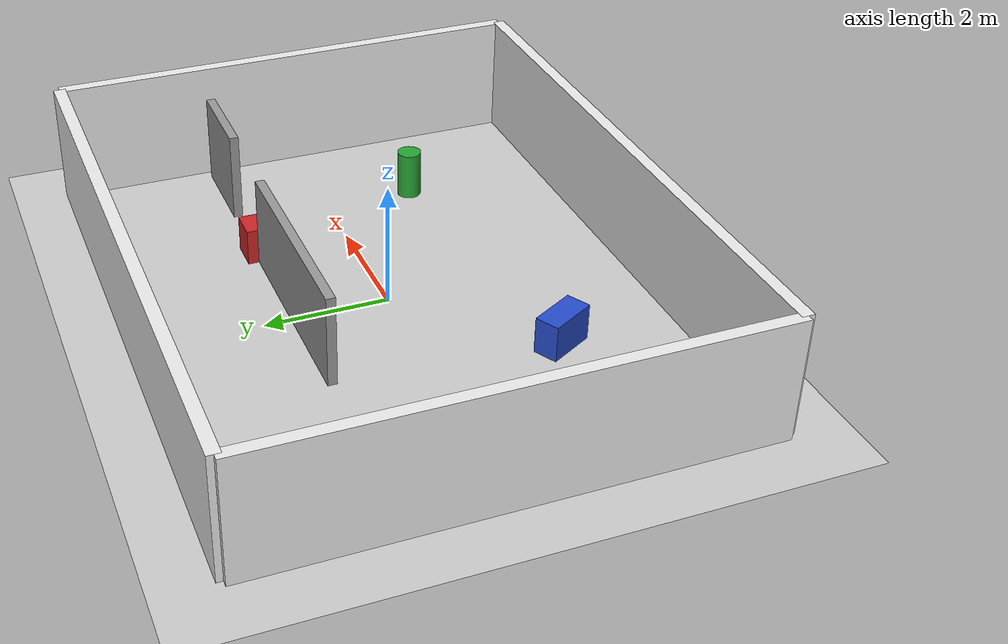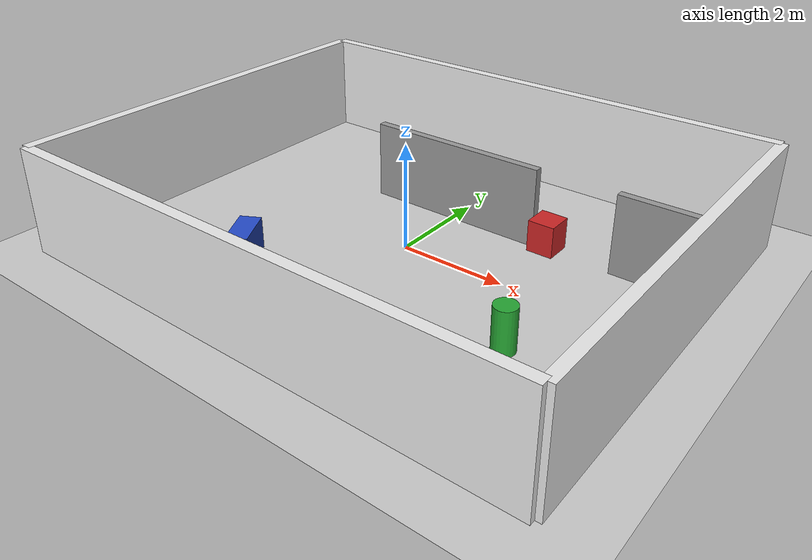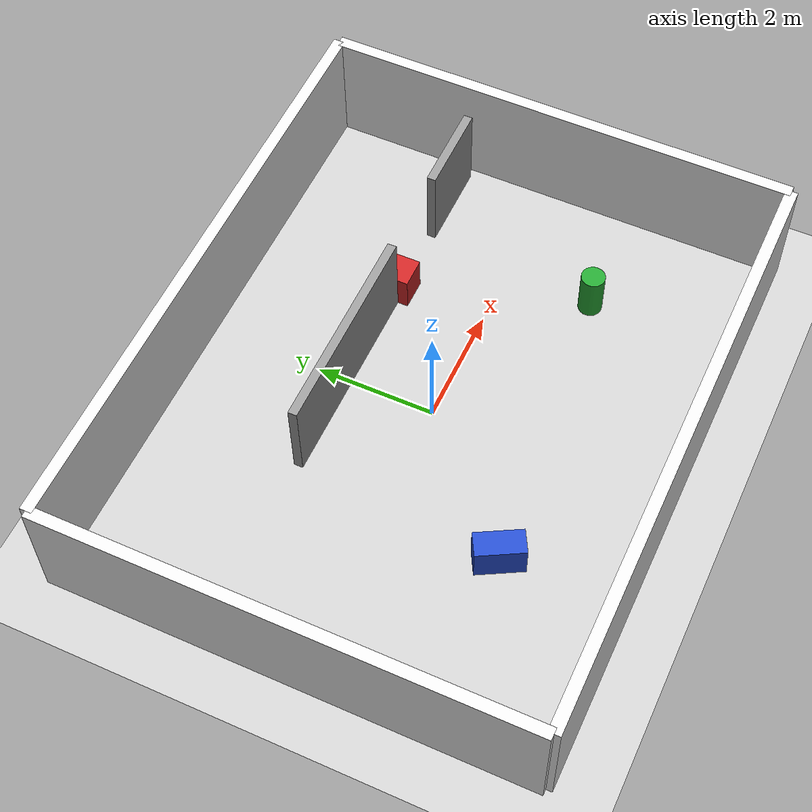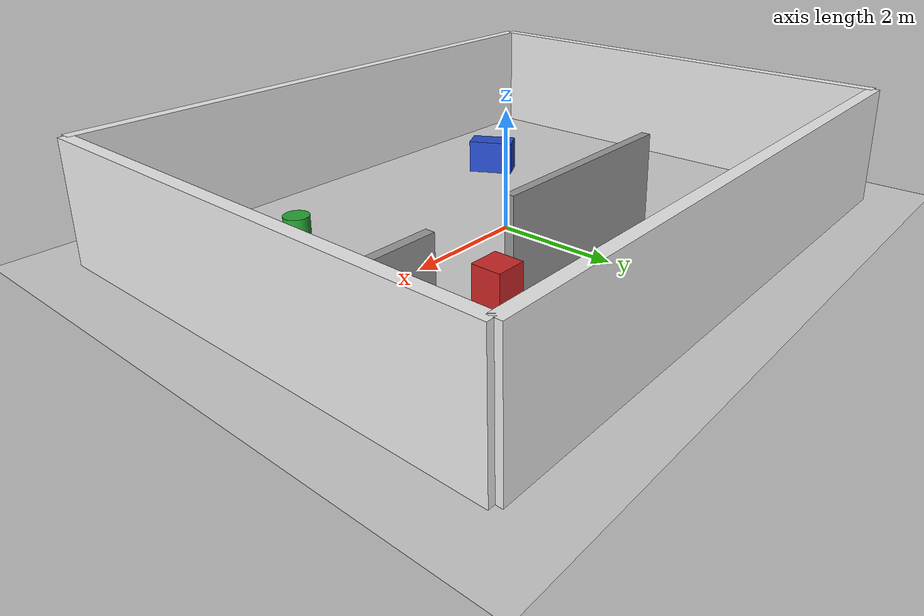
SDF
<?xml version="1.0" ?>
<sdf version="1.6">
  <world name="arjuna_world">

    <!-- Lighting -->
    <include>
      <uri>model://sun</uri>
    </include>
    <include>
      <uri>model://ground_plane</uri>
    </include>

    <!-- Physics -->
    <physics type="ode">
      <real_time_update_rate>1000.0</real_time_update_rate>
      <max_step_size>0.001</max_step_size>
      <real_time_factor>1</real_time_factor>
    </physics>

    <!-- ===== INDOOR ROOM WALLS ===== -->
    <!-- Outer walls forming a 10x8 metre room -->

    <!-- North wall -->
    <model name="wall_north">
      <static>true</static>
      <pose>0 4 1 0 0 0</pose>
      <link name="link">
        <collision name="collision">
          <geometry><box><size>10 0.2 2</size></box></geometry>
        </collision>
        <visual name="visual">
          <geometry><box><size>10 0.2 2</size></box></geometry>
          <material><script><name>Gazebo/White</name></script></material>
        </visual>
      </link>
    </model>

    <!-- South wall -->
    <model name="wall_south">
      <static>true</static>
      <pose>0 -4 1 0 0 0</pose>
      <link name="link">
        <collision name="collision">
          <geometry><box><size>10 0.2 2</size></box></geometry>
        </collision>
        <visual name="visual">
          <geometry><box><size>10 0.2 2</size></box></geometry>
          <material><script><name>Gazebo/White</name></script></material>
        </visual>
      </link>
    </model>

    <!-- East wall -->
    <model name="wall_east">
      <static>true</static>
      <pose>5 0 1 0 0 0</pose>
      <link name="link">
        <collision name="collision">
          <geometry><box><size>0.2 8 2</size></box></geometry>
        </collision>
        <visual name="visual">
          <geometry><box><size>0.2 8 2</size></box></geometry>
          <material><script><name>Gazebo/White</name></script></material>
        </visual>
      </link>
    </model>

    <!-- West wall -->
    <model name="wall_west">
      <static>true</static>
      <pose>-5 0 1 0 0 0</pose>
      <link name="link">
        <collision name="collision">
          <geometry><box><size>0.2 8 2</size></box></geometry>
        </collision>
        <visual name="visual">
          <geometry><box><size>0.2 8 2</size></box></geometry>
          <material><script><name>Gazebo/White</name></script></material>
        </visual>
      </link>
    </model>

    <!-- ===== OBSTACLES ===== -->

    <!-- Box obstacle 1 -->
    <model name="box_1">
      <static>true</static>
      <pose>2.0 1.5 0.3 0 0 0</pose>
      <link name="link">
        <collision name="collision">
          <geometry><box><size>0.5 0.5 0.6</size></box></geometry>
        </collision>
        <visual name="visual">
          <geometry><box><size>0.5 0.5 0.6</size></box></geometry>
          <material><script><name>Gazebo/Red</name></script></material>
        </visual>
      </link>
    </model>

    <!-- Box obstacle 2 -->
    <model name="box_2">
      <static>true</static>
      <pose>-2.0 -2.0 0.3 0 0 0.5</pose>
      <link name="link">
        <collision name="collision">
          <geometry><box><size>0.4 0.8 0.6</size></box></geometry>
        </collision>
        <visual name="visual">
          <geometry><box><size>0.4 0.8 0.6</size></box></geometry>
          <material><script><name>Gazebo/Blue</name></script></material>
        </visual>
      </link>
    </model>

    <!-- Cylinder obstacle -->
    <model name="cylinder_1">
      <static>true</static>
      <pose>3.0 -1.5 0.4 0 0 0</pose>
      <link name="link">
        <collision name="collision">
          <geometry><cylinder><radius>0.2</radius><length>0.8</length></cylinder></geometry>
        </collision>
        <visual name="visual">
          <geometry><cylinder><radius>0.2</radius><length>0.8</length></cylinder></geometry>
          <material><script><name>Gazebo/Green</name></script></material>
        </visual>
      </link>
    </model>

    <!-- Inner divider wall with gap -->
    <model name="divider_wall_left">
      <static>true</static>
      <pose>0 1.5 0.75 0 0 0</pose>
      <link name="link">
        <collision name="collision">
          <geometry><box><size>3.5 0.15 1.5</size></box></geometry>
        </collision>
        <visual name="visual">
          <geometry><box><size>3.5 0.15 1.5</size></box></geometry>
          <material><script><name>Gazebo/Grey</name></script></material>
        </visual>
      </link>
    </model>

    <model name="divider_wall_right">
      <static>true</static>
      <pose>4.0 1.5 0.75 0 0 0</pose>
      <link name="link">
        <collision name="collision">
          <geometry><box><size>1.5 0.15 1.5</size></box></geometry>
        </collision>
        <visual name="visual">
          <geometry><box><size>1.5 0.15 1.5</size></box></geometry>
          <material><script><name>Gazebo/Grey</name></script></material>
        </visual>
      </link>
    </model>

  </world>
</sdf>
